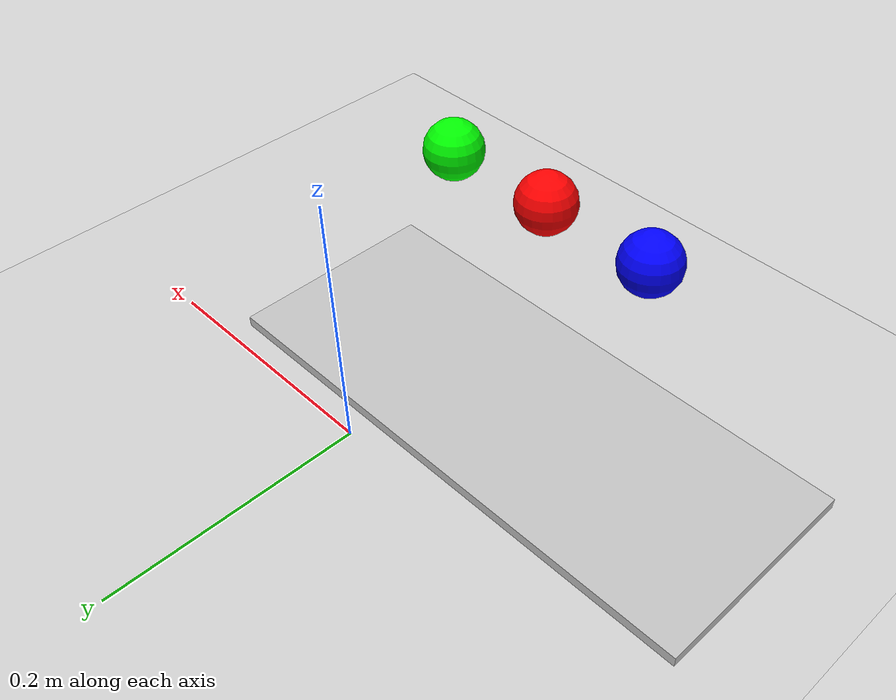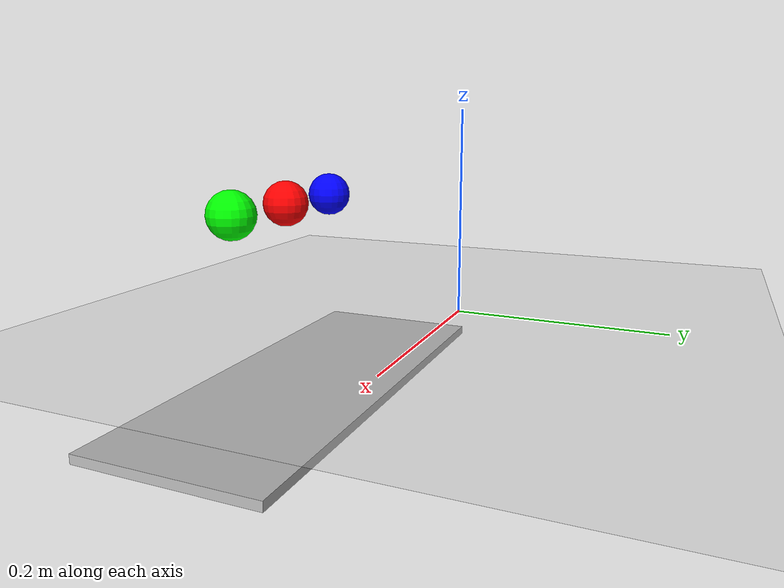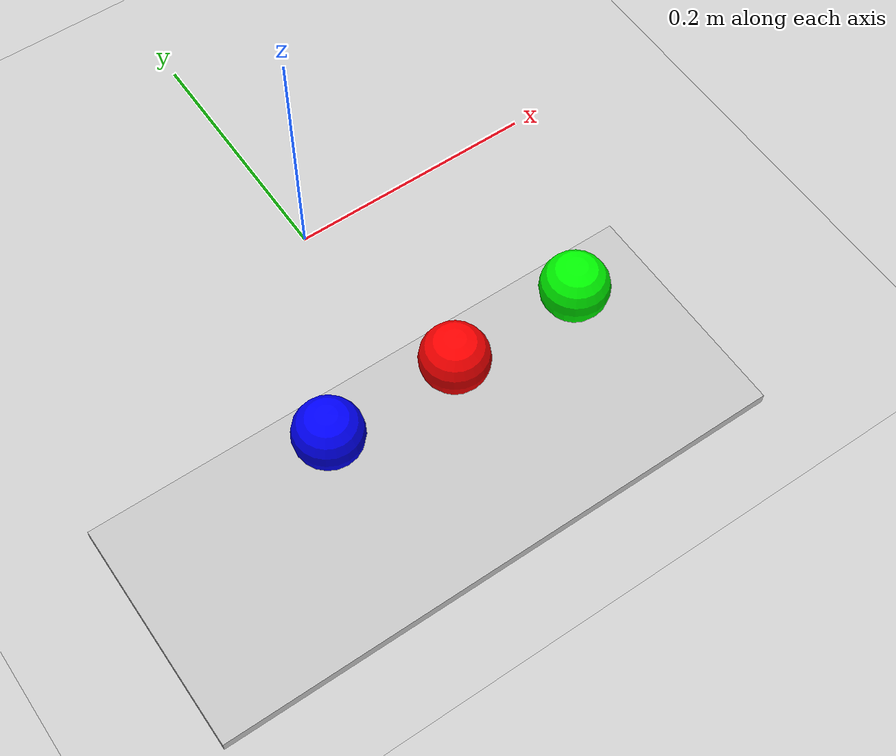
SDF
<?xml version="1.0" ?>

<!-- SDF language version -->
<sdf version="1.7">
  <!-- World -->
  <world name="Environment v3.0">
     <plugin name="gazebo_ros_state" filename="libgazebo_ros_state.so">
      <ros>
        <namespace>/gazebo_msgs</namespace>
        <argument>model_states:=model_states</argument>
        <argument>link_states:=link_states</argument>
      </ros>

      <update_rate>1.0</update_rate>
    </plugin>

    <!-- Add sun to world -->
    <include>
      <uri>model://sun</uri>
    </include>
    <!-- Add ground plane to world -->
    <include>
      <uri>model://ground_plane</uri>
    </include>

    <!-- Add a rectangle to serve as a table to the world -->

    <!-- Max x 0.26428570556640624
Min x -0.26428570556640624
Max y 0.26428570556640624
Min y -0.26428570556640624 -->
    <model name="table">
      <pose>0 -0.175 -0.1 0 0 0</pose>
      <link name="table_link">
        <collision name="collision">
          <geometry>
            <box>
              <!-- Set size to be within min and max -->
              <size> 0.5 0.2 0.01 </size>
            </box>
          </geometry>
        </collision>
        <visual name="visual">
          <geometry>
            <box>
              <size> 0.5 0.2 0.01 </size>
            </box>
          </geometry>
        </visual>
      </link>
    </model>

    <!-- Add a red ball to the world -->
    <model name="red_ball">
      <pose>0 -0.2 0.1 0 0 0</pose>
      <link name="link">
        <pose>0 0 0 0 0 0</pose>
        <collision name="collision">
          <geometry>
            <sphere>
              <radius>0.025</radius>
            </sphere>
          </geometry>
        </collision>
         <!-- Add mass -->
        <inertial>
          <mass>0.1</mass>
          <inertia>
            <ixx>0.1</ixx>
            <ixy>0</ixy>
            <ixz>0</ixz>
            <iyy>0.1</iyy>
            <iyz>0</iyz>
            <izz>0.1</izz>
          </inertia>
        </inertial>
        <visual name="visual">
          <geometry>
            <sphere>
              <radius>0.025</radius>
            </sphere>
          </geometry>
          <material>
            <ambient>1 0 0 1</ambient>
            <diffuse>1 0 0 1</diffuse>
            <specular>0 0 0 1</specular>
          </material>
        </visual>
      </link>
    </model>

    <!-- Add a green ball to the world -->
    <model name="green_ball">
      <pose>0.1 -0.2 0.1 0 0 0</pose>
      <link name="link">
        <pose>0 0 0 0 0 0</pose>
        <collision name="collision">
          <geometry>
            <sphere>
              <radius>0.025</radius>
            </sphere>
          </geometry>
        </collision>
        <!-- Add mass -->
        <inertial>
          <mass>0.1</mass>
          <inertia>
            <ixx>0.1</ixx>
            <ixy>0</ixy>
            <ixz>0</ixz>
            <iyy>0.1</iyy>
            <iyz>0</iyz>
            <izz>0.1</izz>
          </inertia>
        </inertial>
        <visual name="visual">
          <geometry>
            <sphere>
              <radius>0.025</radius>
            </sphere>
          </geometry>
          <material>
            <ambient>0 1 0 1</ambient>
            <diffuse>0 1 0 1</diffuse>
            <specular>0 0 0 1</specular>
          </material>
        </visual>
      </link>
      <!-- Add ROS2 plugin for getting the position as a topic -->
    </model>

    <!-- Add a blue ball to the world -->
    <model name="blue_ball">
      <pose>-0.1 -0.2 0.1 0 0 0</pose>
      <link name="link">
        <pose>0 0 0 0 0 0</pose>
        <collision name="collision">
          <geometry>
            <sphere>
              <radius>0.025</radius>
            </sphere>
          </geometry>
        </collision>
        <!-- Add mass -->
        <inertial>
          <mass>0.1</mass>
          <inertia>
            <ixx>0.1</ixx>
            <ixy>0</ixy>
            <ixz>0</ixz>
            <iyy>0.1</iyy>
            <iyz>0</iyz>
            <izz>0.1</izz>
          </inertia>
        </inertial>
        <visual name="visual">
          <geometry>
            <sphere>
              <radius>0.025</radius>
            </sphere>
          </geometry>
          <material>
            <ambient>0 0 1 1</ambient>
            <diffuse>0 0 1 1</diffuse>
            <specular>0 0 0 1</specular>
          </material>
        </visual>
      </link>
    </model>

  <!-- Add a stereo camera with ROS support -->
  <model name='Stereo_camera'>
    <link name='cam_link'>
      <gravity>0</gravity>
      <sensor type="multicamera" name="stereo_camera">
        <camera name="left">
          <pose>0.1 -0.18 0.7 3.1415 1.5707 1.5707 </pose>
          <horizontal_fov>1.3962634</horizontal_fov>
          <image>
            <width>640</width>
            <height>480</height>
            <format>R8G8B8</format>
          </image>
          <clip>
            <near>0.02</near>
            <far>300</far>
          </clip>
          <lens>
            <intrinsics>
              <fx>381.36246688113556</fx>
              <fy>381.36246688113556</fy>
              <cx>320</cx>
              <cy>240</cy>
              <s>0</s>
            </intrinsics>
          </lens>
        </camera>
        <camera name="right">
          <pose>0.1 -0.24 0.7 3.1415 1.5707  1.5707 </pose>
          <horizontal_fov>1.3962634</horizontal_fov>
          <image>
            <width>640</width>
            <height>480</height>
            <format>R8G8B8</format>
          </image>
          <clip>
            <near>0.02</near>
            <far>300</far>
          </clip>
          <intrinsics>
            <fx>381.36246688113556</fx>
            <fy>381.36246688113556</fy>
            <cx>320</cx>
            <cy>240</cy>
            <s>0</s>
          </intrinsics>
        </camera>

        <!-- Set update_rate only sensor, not on plugin -->
        <update_rate>1</update_rate>

        <plugin name="plugin_name" filename="libgazebo_ros_camera.so">
          <ros>
            <namespace>custom_ns</namespace>
            <!-- topics need to be prefixed with camera_name for remapping -->
            <remapping>custom_camera/left/image_raw:=custom_camera/left/custom_image</remapping>
            <remapping>custom_camera/right/image_raw:=custom_camera/right/custom_image</remapping>
            <remapping>custom_camera/left/camera_info:=custom_camera/left/custom_camera_info</remapping>
            <remapping>custom_camera/right/camera_info:=custom_camera/right/custom_camera_info</remapping>
          </ros>

          <camera_name>custom_camera</camera_name>

        </plugin>
        <visualize>true</visualize>
      </sensor>
    </link>
  </model>

  <!-- Import a model into this file -->

  </world>
</sdf>
